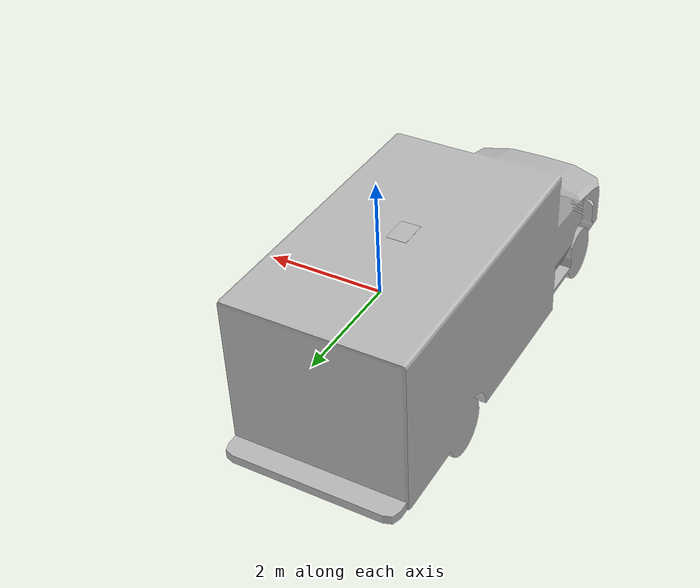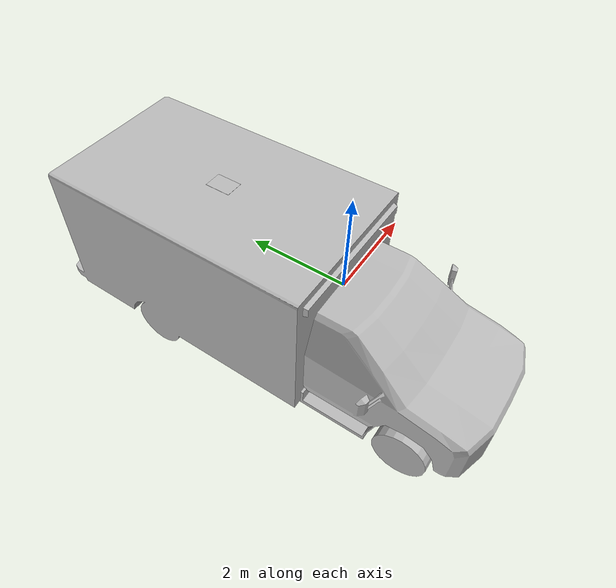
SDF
<?xml version='1.0'?>
<sdf version='1.6'>
  <model name='ambulance_with_pad'>
    <model name='ARtag'>
      <pose frame=''>-1.3 1.5 2.5 0 -0 0</pose>
      <static>0</static>
      <link name='link'>
        <inertial>
          <mass>1</mass>
          <inertia>
            <ixx>0</ixx>
            <ixy>0</ixy>
            <ixz>0</ixz>
            <iyy>0</iyy>
            <iyz>0</iyz>
            <izz>0</izz>
          </inertia>
        </inertial>
        <collision name='collision'>
          <geometry>
            <box>
              <size>0.297 0.42 0.01</size>
            </box>
          </geometry>
          <surface>
            <contact>
              <ode>
                <max_vel>0.1</max_vel>
                <min_depth>0.001</min_depth>
              </ode>
            </contact>
          </surface>
        </collision>
        <visual name='visual'>
          <geometry>
            <mesh>
              <uri>model://ARtag/meshes/ARtagA3.dae</uri>
            </mesh>
          </geometry>
        </visual>
      </link>
    </model>
    <model name='ambulance'>
      <static>1</static>
      <link name='link'>
        <collision name='collision'>
          <geometry>
            <mesh>
              <scale>0.0254 0.0254 0.0254</scale>
              <uri>model://ambulance/meshes/ambulance.obj</uri>
            </mesh>
          </geometry>
        </collision>
        <visual name='visual'>
          <geometry>
            <mesh>
              <scale>0.0254 0.0254 0.0254</scale>
              <uri>model://ambulance/meshes/ambulance.obj</uri>
            </mesh>
          </geometry>
        </visual>
      </link>
      <plugin name='model_mover' filename='libmodel_mover.so'/>
      <pose frame=''>-1.29191 0.499384 -0.375 0 -0 0</pose>
    </model>
    <joint name='link_JOINT_0' type='fixed'>
      <parent>ambulance::link</parent>
      <child>ARtag::link</child>
      <pose frame=''>0 0 0 0 -0 0</pose>
      <physics>
        <ode>
          <limit>
            <cfm>0</cfm>
            <erp>0.2</erp>
          </limit>
          <suspension>
            <cfm>0</cfm>
            <erp>0.2</erp>
          </suspension>
        </ode>
      </physics>
    </joint>
    <static>0</static>
    <allow_auto_disable>1</allow_auto_disable>
  </model>
</sdf>
